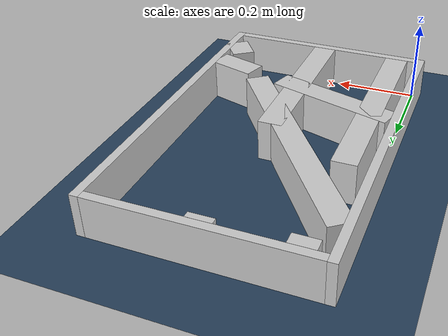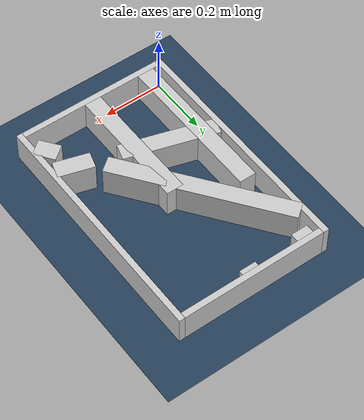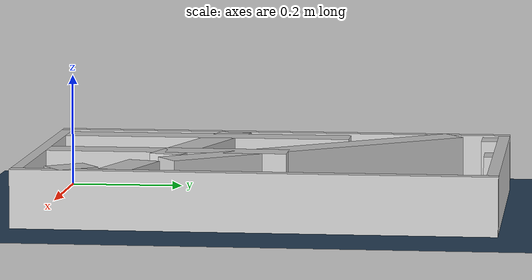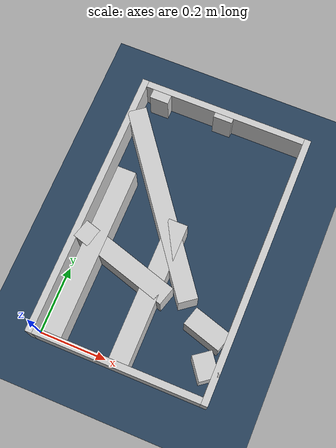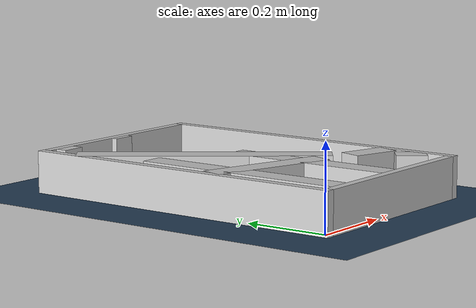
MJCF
<?xml version="1.0" ?>
<mujoco model="generated_real_template">
  <compiler angle="degree"/>
  <option timestep="0.002" integrator="implicitfast" iterations="100" cone="elliptic"/>
  <default>
    <geom density="1"/>
  </default>
  <asset>
    <texture builtin="gradient" height="3072" rgb1="0.3 0.5 0.7" rgb2="0 0 0" type="skybox" width="512"/>
    <texture builtin="checker" height="300" mark="edge" markrgb="0.8 0.8 0.8" name="groundplane" rgb1="0.2 0.3 0.4" rgb2="0.1 0.2 0.3" type="2d" width="300"/>
    <material name="groundplane" reflectance="0.2" texrepeat="5 5" texture="groundplane" texuniform="true"/>
  </asset>
  <worldbody>
    <light dir="0 0 -1" directional="true" pos="0 0 1.5"/>
    <geom name="floor" type="plane" condim="4" friction="0.5 0.005 0.001" material="groundplane" size="0 0 0.05"/>
    <body name="walls">
      <geom name="wall_boundary_left" type="box" condim="4" friction="1.0 0.005 0.0001" rgba="0.8 0.8 0.8 1" pos="-0.010000 0.387500 0.050000" euler="0 0 0.000000" size="0.010000 0.407500 0.050000"/>
      <geom name="wall_boundary_right" type="box" condim="4" friction="1.0 0.005 0.0001" rgba="0.8 0.8 0.8 1" pos="0.500000 0.387500 0.050000" euler="0 0 0.000000" size="0.010000 0.407500 0.050000"/>
      <geom name="wall_boundary_bottom" type="box" condim="4" friction="1.0 0.005 0.0001" rgba="0.8 0.8 0.8 1" pos="0.245000 -0.010000 0.050000" euler="0 0 0.000000" size="0.245000 0.010000 0.050000"/>
      <geom name="wall_boundary_top" type="box" condim="4" friction="1.0 0.005 0.0001" rgba="0.8 0.8 0.8 1" pos="0.245000 0.785000 0.050000" euler="0 0 0.000000" size="0.245000 0.010000 0.050000"/>
      <geom name="wall_inner_1_1" type="box" condim="4" friction="1.0 0.005 0.0001" rgba="0.8 0.8 0.8 1" pos="0.148809 0.256447 0.050000" euler="0 0 -16.651097" size="0.155322 0.028500 0.050000"/>
      <geom name="wall_inner_1_2" type="box" condim="4" friction="1.0 0.005 0.0001" rgba="0.8 0.8 0.8 1" pos="0.433491 0.171303 0.050000" euler="0 0 -16.651097" size="0.058982 0.028500 0.050000"/>
      <geom name="wall_inner_2_1" type="box" condim="4" friction="1.0 0.005 0.0001" rgba="0.8 0.8 0.8 1" pos="0.247367 0.210107 0.050000" euler="0 0 90.000000" size="0.210107 0.028500 0.050000"/>
      <geom name="wall_inner_2_2" type="box" condim="4" friction="1.0 0.005 0.0001" rgba="0.8 0.8 0.8 1" pos="0.247367 0.767499 0.050000" euler="0 0 90.000000" size="0.007501 0.028500 0.050000"/>
      <geom name="wall_inner_3_1" type="box" condim="4" friction="1.0 0.005 0.0001" rgba="0.8 0.8 0.8 1" pos="0.179683 0.459109 0.050000" euler="0 0 -53.193599" size="0.295208 0.028500 0.050000"/>
      <geom name="wall_inner_3_2" type="box" condim="4" friction="1.0 0.005 0.0001" rgba="0.8 0.8 0.8 1" pos="0.465318 0.077381 0.050000" euler="0 0 -53.193599" size="0.036490 0.028500 0.050000"/>
      <geom name="wall_inner_4_1" type="box" condim="4" friction="1.0 0.005 0.0001" rgba="0.8 0.8 0.8 1" pos="0.050906 0.255541 0.050000" euler="0 0 90.000000" size="0.255541 0.028500 0.050000"/>
      <geom name="wall_inner_4_2" type="box" condim="4" friction="1.0 0.005 0.0001" rgba="0.8 0.8 0.8 1" pos="0.050906 0.761051 0.050000" euler="0 0 90.000000" size="0.013949 0.028500 0.050000"/>
    </body>
  </worldbody>
</mujoco>
